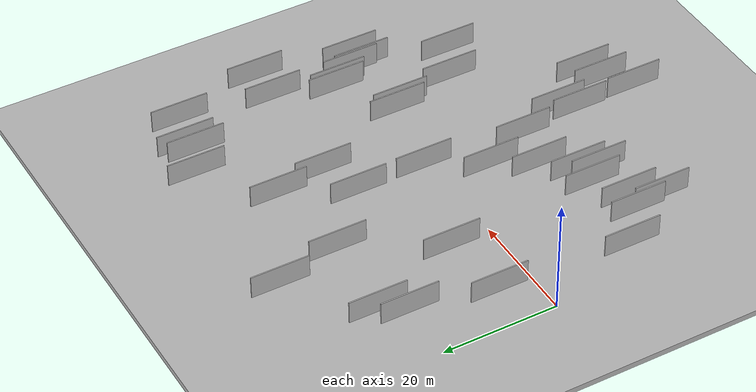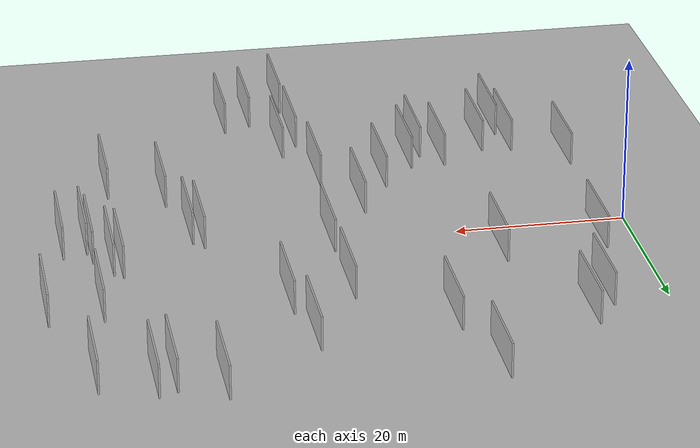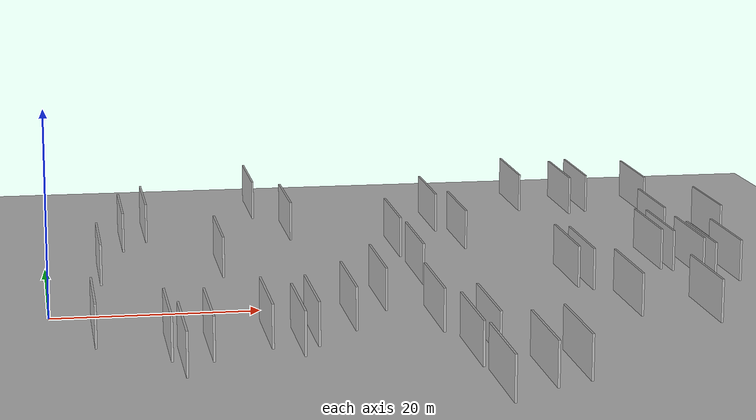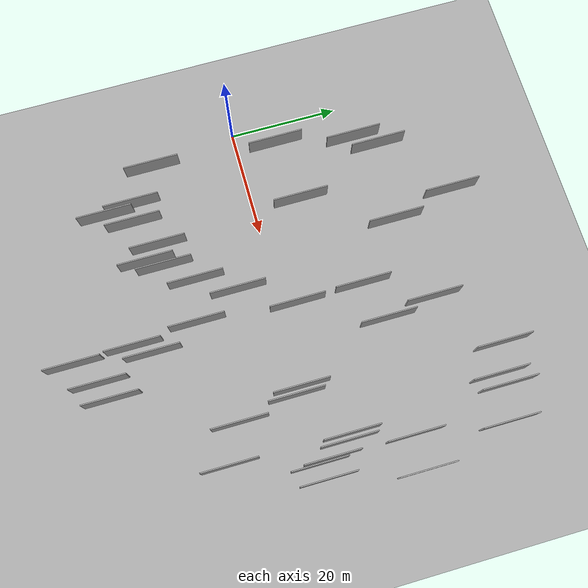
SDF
<?xml version="1.0" encoding="utf-8"?>

<sdf version="1.6">

   <world name="default">

      <gui fullscreen="0">

         <camera name="user_camera">

            <pose>-15 0 4.57585 0 0 0</pose>

            <view_controller>orbit</view_controller>

         </camera>

      </gui>

      <scene>

         <sky>

           <clouds>

             <speed>12</speed>

           </clouds>

         </sky>

         <ambient>0.4 0.4 0.4 1</ambient>

         <background>0.7 0.7 0.7 1</background>

         <shadows>1</shadows>

      </scene>

      <gravity>0 0 -9.8066</gravity>

      <magnetic_field>6e-06 2.3e-05 -4.2e-05</magnetic_field>

      <physics default="0" name="default_physics" type="ode">

         <ode>

            <solver>

               <type>quick</type>

               <iters>10</iters>

               <sor>1.0</sor>

               <use_dynamic_moi_rescaling>0</use_dynamic_moi_rescaling>

            </solver>

            <constraints>

               <cfm>0</cfm>

               <erp>0.2</erp>

               <contact_max_correcting_vel>100</contact_max_correcting_vel>

               <contact_surface_layer>0.001</contact_surface_layer>

            </constraints>

         </ode>

         <max_step_size>0.004</max_step_size>

         <real_time_factor>1</real_time_factor>

         <real_time_update_rate>250</real_time_update_rate>

      </physics>

      <light name="sun" type="directional">

         <cast_shadows>1</cast_shadows>

         <pose>0 0 10 0 0 0</pose>

         <diffuse>0.8 0.8 0.8 1</diffuse>

         <specular>0.2 0.2 0.2 1</specular>

         <attenuation>

            <range>1000</range>

            <constant>0.9</constant>

            <linear>0.01</linear>

            <quadratic>0.001</quadratic>

         </attenuation>

         <direction>-0.5 0.1 -0.9</direction>

      </light>

      <include>

         <name>ground_plane_1</name>

         <uri>model://HANNAS_ground_plane</uri>

         <pose>0 0 0  0 0 0</pose>

      </include>

      <include>

         <name>ground_plane_2</name>

         <uri>model://HANNAS_ground_plane</uri>

         <pose>100 0 0  0 0 0</pose>

      </include>

      <model name="HANNAS_wall_1">

         <static>1</static>

         <pose frame="">13.2933 -21.4593 2.5 0.000000 0.000000 1.570796</pose>

         <link name="link">

            <pose frame="">0 0 2.00 0 0 0</pose>

            <collision name="collision">

               <geometry>

                  <box>

                     <size>10.00 0.2 4.00</size>

                  </box>

               </geometry>

               <max_contacts>10</max_contacts>

               <surface>

                  <contact>

                     <ode/>

                  </contact>

                  <bounce/>

                  <friction>

                     <torsional>

                        <ode/>

                     </torsional>

                     <ode/>

                  </friction>

               </surface>

            </collision>

            <visual name="visual">

               <cast_shadows>0</cast_shadows>

               <geometry>

                  <box>

                     <size>10.00 0.2 4.00</size>

                  </box>

               </geometry>

               <material>

                  <script>

                     <uri>model://HANNAS_wall/materials/scripts</uri>

                     <uri>model://HANNAS_wall/materials/textures</uri>

                     <name>vrc/HANNAS_wall</name>

                  </script>

               </material>

            </visual>

            <self_collide>0</self_collide>

            <enable_wind>0</enable_wind>

            <kinematic>0</kinematic>

         </link>

      </model>

      <model name="HANNAS_wall_2">

         <static>1</static>

         <pose frame="">65.8893 -0.6012 2.5 0.000000 0.000000 1.570796</pose>

         <link name="link">

            <pose frame="">0 0 2.00 0 0 0</pose>

            <collision name="collision">

               <geometry>

                  <box>

                     <size>10.00 0.2 4.00</size>

                  </box>

               </geometry>

               <max_contacts>10</max_contacts>

               <surface>

                  <contact>

                     <ode/>

                  </contact>

                  <bounce/>

                  <friction>

                     <torsional>

                        <ode/>

                     </torsional>

                     <ode/>

                  </friction>

               </surface>

            </collision>

            <visual name="visual">

               <cast_shadows>0</cast_shadows>

               <geometry>

                  <box>

                     <size>10.00 0.2 4.00</size>

                  </box>

               </geometry>

               <material>

                  <script>

                     <uri>model://HANNAS_wall/materials/scripts</uri>

                     <uri>model://HANNAS_wall/materials/textures</uri>

                     <name>vrc/HANNAS_wall</name>

                  </script>

               </material>

            </visual>

            <self_collide>0</self_collide>

            <enable_wind>0</enable_wind>

            <kinematic>0</kinematic>

         </link>

      </model>

      <model name="HANNAS_wall_3">

         <static>1</static>

         <pose frame="">35.5225 2.7296 2.5 0.000000 0.000000 1.570796</pose>

         <link name="link">

            <pose frame="">0 0 2.00 0 0 0</pose>

            <collision name="collision">

               <geometry>

                  <box>

                     <size>10.00 0.2 4.00</size>

                  </box>

               </geometry>

               <max_contacts>10</max_contacts>

               <surface>

                  <contact>

                     <ode/>

                  </contact>

                  <bounce/>

                  <friction>

                     <torsional>

                        <ode/>

                     </torsional>

                     <ode/>

                  </friction>

               </surface>

            </collision>

            <visual name="visual">

               <cast_shadows>0</cast_shadows>

               <geometry>

                  <box>

                     <size>10.00 0.2 4.00</size>

                  </box>

               </geometry>

               <material>

                  <script>

                     <uri>model://HANNAS_wall/materials/scripts</uri>

                     <uri>model://HANNAS_wall/materials/textures</uri>

                     <name>vrc/HANNAS_wall</name>

                  </script>

               </material>

            </visual>

            <self_collide>0</self_collide>

            <enable_wind>0</enable_wind>

            <kinematic>0</kinematic>

         </link>

      </model>

      <model name="HANNAS_wall_4">

         <static>1</static>

         <pose frame="">63.1721 -1.3532 2.5 0.000000 0.000000 1.570796</pose>

         <link name="link">

            <pose frame="">0 0 2.00 0 0 0</pose>

            <collision name="collision">

               <geometry>

                  <box>

                     <size>10.00 0.2 4.00</size>

                  </box>

               </geometry>

               <max_contacts>10</max_contacts>

               <surface>

                  <contact>

                     <ode/>

                  </contact>

                  <bounce/>

                  <friction>

                     <torsional>

                        <ode/>

                     </torsional>

                     <ode/>

                  </friction>

               </surface>

            </collision>

            <visual name="visual">

               <cast_shadows>0</cast_shadows>

               <geometry>

                  <box>

                     <size>10.00 0.2 4.00</size>

                  </box>

               </geometry>

               <material>

                  <script>

                     <uri>model://HANNAS_wall/materials/scripts</uri>

                     <uri>model://HANNAS_wall/materials/textures</uri>

                     <name>vrc/HANNAS_wall</name>

                  </script>

               </material>

            </visual>

            <self_collide>0</self_collide>

            <enable_wind>0</enable_wind>

            <kinematic>0</kinematic>

         </link>

      </model>

      <model name="HANNAS_wall_5">

         <static>1</static>

         <pose frame="">7.8919 21.2013 2.5 0.000000 0.000000 1.570796</pose>

         <link name="link">

            <pose frame="">0 0 2.00 0 0 0</pose>

            <collision name="collision">

               <geometry>

                  <box>

                     <size>10.00 0.2 4.00</size>

                  </box>

               </geometry>

               <max_contacts>10</max_contacts>

               <surface>

                  <contact>

                     <ode/>

                  </contact>

                  <bounce/>

                  <friction>

                     <torsional>

                        <ode/>

                     </torsional>

                     <ode/>

                  </friction>

               </surface>

            </collision>

            <visual name="visual">

               <cast_shadows>0</cast_shadows>

               <geometry>

                  <box>

                     <size>10.00 0.2 4.00</size>

                  </box>

               </geometry>

               <material>

                  <script>

                     <uri>model://HANNAS_wall/materials/scripts</uri>

                     <uri>model://HANNAS_wall/materials/textures</uri>

                     <name>vrc/HANNAS_wall</name>

                  </script>

               </material>

            </visual>

            <self_collide>0</self_collide>

            <enable_wind>0</enable_wind>

            <kinematic>0</kinematic>

         </link>

      </model>

      <model name="HANNAS_wall_6">

         <static>1</static>

         <pose frame="">35.3623 -26.5021 2.5 0.000000 0.000000 1.570796</pose>

         <link name="link">

            <pose frame="">0 0 2.00 0 0 0</pose>

            <collision name="collision">

               <geometry>

                  <box>

                     <size>10.00 0.2 4.00</size>

                  </box>

               </geometry>

               <max_contacts>10</max_contacts>

               <surface>

                  <contact>

                     <ode/>

                  </contact>

                  <bounce/>

                  <friction>

                     <torsional>

                        <ode/>

                     </torsional>

                     <ode/>

                  </friction>

               </surface>

            </collision>

            <visual name="visual">

               <cast_shadows>0</cast_shadows>

               <geometry>

                  <box>

                     <size>10.00 0.2 4.00</size>

                  </box>

               </geometry>

               <material>

                  <script>

                     <uri>model://HANNAS_wall/materials/scripts</uri>

                     <uri>model://HANNAS_wall/materials/textures</uri>

                     <name>vrc/HANNAS_wall</name>

                  </script>

               </material>

            </visual>

            <self_collide>0</self_collide>

            <enable_wind>0</enable_wind>

            <kinematic>0</kinematic>

         </link>

      </model>

      <model name="HANNAS_wall_7">

         <static>1</static>

         <pose frame="">22.6817 -18.0327 2.5 0.000000 0.000000 1.570796</pose>

         <link name="link">

            <pose frame="">0 0 2.00 0 0 0</pose>

            <collision name="collision">

               <geometry>

                  <box>

                     <size>10.00 0.2 4.00</size>

                  </box>

               </geometry>

               <max_contacts>10</max_contacts>

               <surface>

                  <contact>

                     <ode/>

                  </contact>

                  <bounce/>

                  <friction>

                     <torsional>

                        <ode/>

                     </torsional>

                     <ode/>

                  </friction>

               </surface>

            </collision>

            <visual name="visual">

               <cast_shadows>0</cast_shadows>

               <geometry>

                  <box>

                     <size>10.00 0.2 4.00</size>

                  </box>

               </geometry>

               <material>

                  <script>

                     <uri>model://HANNAS_wall/materials/scripts</uri>

                     <uri>model://HANNAS_wall/materials/textures</uri>

                     <name>vrc/HANNAS_wall</name>

                  </script>

               </material>

            </visual>

            <self_collide>0</self_collide>

            <enable_wind>0</enable_wind>

            <kinematic>0</kinematic>

         </link>

      </model>

      <model name="HANNAS_wall_8">

         <static>1</static>

         <pose frame="">22.5826 35.2984 2.5 0.000000 0.000000 1.570796</pose>

         <link name="link">

            <pose frame="">0 0 2.00 0 0 0</pose>

            <collision name="collision">

               <geometry>

                  <box>

                     <size>10.00 0.2 4.00</size>

                  </box>

               </geometry>

               <max_contacts>10</max_contacts>

               <surface>

                  <contact>

                     <ode/>

                  </contact>

                  <bounce/>

                  <friction>

                     <torsional>

                        <ode/>

                     </torsional>

                     <ode/>

                  </friction>

               </surface>

            </collision>

            <visual name="visual">

               <cast_shadows>0</cast_shadows>

               <geometry>

                  <box>

                     <size>10.00 0.2 4.00</size>

                  </box>

               </geometry>

               <material>

                  <script>

                     <uri>model://HANNAS_wall/materials/scripts</uri>

                     <uri>model://HANNAS_wall/materials/textures</uri>

                     <name>vrc/HANNAS_wall</name>

                  </script>

               </material>

            </visual>

            <self_collide>0</self_collide>

            <enable_wind>0</enable_wind>

            <kinematic>0</kinematic>

         </link>

      </model>

      <model name="HANNAS_wall_9">

         <static>1</static>

         <pose frame="">30.3862 -6.6031 2.5 0.000000 0.000000 1.570796</pose>

         <link name="link">

            <pose frame="">0 0 2.00 0 0 0</pose>

            <collision name="collision">

               <geometry>

                  <box>

                     <size>10.00 0.2 4.00</size>

                  </box>

               </geometry>

               <max_contacts>10</max_contacts>

               <surface>

                  <contact>

                     <ode/>

                  </contact>

                  <bounce/>

                  <friction>

                     <torsional>

                        <ode/>

                     </torsional>

                     <ode/>

                  </friction>

               </surface>

            </collision>

            <visual name="visual">

               <cast_shadows>0</cast_shadows>

               <geometry>

                  <box>

                     <size>10.00 0.2 4.00</size>

                  </box>

               </geometry>

               <material>

                  <script>

                     <uri>model://HANNAS_wall/materials/scripts</uri>

                     <uri>model://HANNAS_wall/materials/textures</uri>

                     <name>vrc/HANNAS_wall</name>

                  </script>

               </material>

            </visual>

            <self_collide>0</self_collide>

            <enable_wind>0</enable_wind>

            <kinematic>0</kinematic>

         </link>

      </model>

      <model name="HANNAS_wall_10">

         <static>1</static>

         <pose frame="">34.2135 -14.9727 2.5 0.000000 0.000000 1.570796</pose>

         <link name="link">

            <pose frame="">0 0 2.00 0 0 0</pose>

            <collision name="collision">

               <geometry>

                  <box>

                     <size>10.00 0.2 4.00</size>

                  </box>

               </geometry>

               <max_contacts>10</max_contacts>

               <surface>

                  <contact>

                     <ode/>

                  </contact>

                  <bounce/>

                  <friction>

                     <torsional>

                        <ode/>

                     </torsional>

                     <ode/>

                  </friction>

               </surface>

            </collision>

            <visual name="visual">

               <cast_shadows>0</cast_shadows>

               <geometry>

                  <box>

                     <size>10.00 0.2 4.00</size>

                  </box>

               </geometry>

               <material>

                  <script>

                     <uri>model://HANNAS_wall/materials/scripts</uri>

                     <uri>model://HANNAS_wall/materials/textures</uri>

                     <name>vrc/HANNAS_wall</name>

                  </script>

               </material>

            </visual>

            <self_collide>0</self_collide>

            <enable_wind>0</enable_wind>

            <kinematic>0</kinematic>

         </link>

      </model>

      <model name="HANNAS_wall_11">

         <static>1</static>

         <pose frame="">60.7117 4.4889 2.5 0.000000 0.000000 1.570796</pose>

         <link name="link">

            <pose frame="">0 0 2.00 0 0 0</pose>

            <collision name="collision">

               <geometry>

                  <box>

                     <size>10.00 0.2 4.00</size>

                  </box>

               </geometry>

               <max_contacts>10</max_contacts>

               <surface>

                  <contact>

                     <ode/>

                  </contact>

                  <bounce/>

                  <friction>

                     <torsional>

                        <ode/>

                     </torsional>

                     <ode/>

                  </friction>

               </surface>

            </collision>

            <visual name="visual">

               <cast_shadows>0</cast_shadows>

               <geometry>

                  <box>

                     <size>10.00 0.2 4.00</size>

                  </box>

               </geometry>

               <material>

                  <script>

                     <uri>model://HANNAS_wall/materials/scripts</uri>

                     <uri>model://HANNAS_wall/materials/textures</uri>

                     <name>vrc/HANNAS_wall</name>

                  </script>

               </material>

            </visual>

            <self_collide>0</self_collide>

            <enable_wind>0</enable_wind>

            <kinematic>0</kinematic>

         </link>

      </model>

      <model name="HANNAS_wall_12">

         <static>1</static>

         <pose frame="">40.0495 -33.5827 2.5 0.000000 0.000000 1.570796</pose>

         <link name="link">

            <pose frame="">0 0 2.00 0 0 0</pose>

            <collision name="collision">

               <geometry>

                  <box>

                     <size>10.00 0.2 4.00</size>

                  </box>

               </geometry>

               <max_contacts>10</max_contacts>

               <surface>

                  <contact>

                     <ode/>

                  </contact>

                  <bounce/>

                  <friction>

                     <torsional>

                        <ode/>

                     </torsional>

                     <ode/>

                  </friction>

               </surface>

            </collision>

            <visual name="visual">

               <cast_shadows>0</cast_shadows>

               <geometry>

                  <box>

                     <size>10.00 0.2 4.00</size>

                  </box>

               </geometry>

               <material>

                  <script>

                     <uri>model://HANNAS_wall/materials/scripts</uri>

                     <uri>model://HANNAS_wall/materials/textures</uri>

                     <name>vrc/HANNAS_wall</name>

                  </script>

               </material>

            </visual>

            <self_collide>0</self_collide>

            <enable_wind>0</enable_wind>

            <kinematic>0</kinematic>

         </link>

      </model>

      <model name="HANNAS_wall_13">

         <static>1</static>

         <pose frame="">26.6444 -13.2926 2.5 0.000000 0.000000 1.570796</pose>

         <link name="link">

            <pose frame="">0 0 2.00 0 0 0</pose>

            <collision name="collision">

               <geometry>

                  <box>

                     <size>10.00 0.2 4.00</size>

                  </box>

               </geometry>

               <max_contacts>10</max_contacts>

               <surface>

                  <contact>

                     <ode/>

                  </contact>

                  <bounce/>

                  <friction>

                     <torsional>

                        <ode/>

                     </torsional>

                     <ode/>

                  </friction>

               </surface>

            </collision>

            <visual name="visual">

               <cast_shadows>0</cast_shadows>

               <geometry>

                  <box>

                     <size>10.00 0.2 4.00</size>

                  </box>

               </geometry>

               <material>

                  <script>

                     <uri>model://HANNAS_wall/materials/scripts</uri>

                     <uri>model://HANNAS_wall/materials/textures</uri>

                     <name>vrc/HANNAS_wall</name>

                  </script>

               </material>

            </visual>

            <self_collide>0</self_collide>

            <enable_wind>0</enable_wind>

            <kinematic>0</kinematic>

         </link>

      </model>

      <model name="HANNAS_wall_14">

         <static>1</static>

         <pose frame="">59.3404 -15.7115 2.5 0.000000 0.000000 1.570796</pose>

         <link name="link">

            <pose frame="">0 0 2.00 0 0 0</pose>

            <collision name="collision">

               <geometry>

                  <box>

                     <size>10.00 0.2 4.00</size>

                  </box>

               </geometry>

               <max_contacts>10</max_contacts>

               <surface>

                  <contact>

                     <ode/>

                  </contact>

                  <bounce/>

                  <friction>

                     <torsional>

                        <ode/>

                     </torsional>

                     <ode/>

                  </friction>

               </surface>

            </collision>

            <visual name="visual">

               <cast_shadows>0</cast_shadows>

               <geometry>

                  <box>

                     <size>10.00 0.2 4.00</size>

                  </box>

               </geometry>

               <material>

                  <script>

                     <uri>model://HANNAS_wall/materials/scripts</uri>

                     <uri>model://HANNAS_wall/materials/textures</uri>

                     <name>vrc/HANNAS_wall</name>

                  </script>

               </material>

            </visual>

            <self_collide>0</self_collide>

            <enable_wind>0</enable_wind>

            <kinematic>0</kinematic>

         </link>

      </model>

      <model name="HANNAS_wall_15">

         <static>1</static>

         <pose frame="">25.3416 23.9030 2.5 0.000000 0.000000 1.570796</pose>

         <link name="link">

            <pose frame="">0 0 2.00 0 0 0</pose>

            <collision name="collision">

               <geometry>

                  <box>

                     <size>10.00 0.2 4.00</size>

                  </box>

               </geometry>

               <max_contacts>10</max_contacts>

               <surface>

                  <contact>

                     <ode/>

                  </contact>

                  <bounce/>

                  <friction>

                     <torsional>

                        <ode/>

                     </torsional>

                     <ode/>

                  </friction>

               </surface>

            </collision>

            <visual name="visual">

               <cast_shadows>0</cast_shadows>

               <geometry>

                  <box>

                     <size>10.00 0.2 4.00</size>

                  </box>

               </geometry>

               <material>

                  <script>

                     <uri>model://HANNAS_wall/materials/scripts</uri>

                     <uri>model://HANNAS_wall/materials/textures</uri>

                     <name>vrc/HANNAS_wall</name>

                  </script>

               </material>

            </visual>

            <self_collide>0</self_collide>

            <enable_wind>0</enable_wind>

            <kinematic>0</kinematic>

         </link>

      </model>

      <model name="HANNAS_wall_16">

         <static>1</static>

         <pose frame="">43.2343 -32.1245 2.5 0.000000 0.000000 1.570796</pose>

         <link name="link">

            <pose frame="">0 0 2.00 0 0 0</pose>

            <collision name="collision">

               <geometry>

                  <box>

                     <size>10.00 0.2 4.00</size>

                  </box>

               </geometry>

               <max_contacts>10</max_contacts>

               <surface>

                  <contact>

                     <ode/>

                  </contact>

                  <bounce/>

                  <friction>

                     <torsional>

                        <ode/>

                     </torsional>

                     <ode/>

                  </friction>

               </surface>

            </collision>

            <visual name="visual">

               <cast_shadows>0</cast_shadows>

               <geometry>

                  <box>

                     <size>10.00 0.2 4.00</size>

                  </box>

               </geometry>

               <material>

                  <script>

                     <uri>model://HANNAS_wall/materials/scripts</uri>

                     <uri>model://HANNAS_wall/materials/textures</uri>

                     <name>vrc/HANNAS_wall</name>

                  </script>

               </material>

            </visual>

            <self_collide>0</self_collide>

            <enable_wind>0</enable_wind>

            <kinematic>0</kinematic>

         </link>

      </model>

      <model name="HANNAS_wall_17">

         <static>1</static>

         <pose frame="">52.9444 -12.3076 2.5 0.000000 0.000000 1.570796</pose>

         <link name="link">

            <pose frame="">0 0 2.00 0 0 0</pose>

            <collision name="collision">

               <geometry>

                  <box>

                     <size>10.00 0.2 4.00</size>

                  </box>

               </geometry>

               <max_contacts>10</max_contacts>

               <surface>

                  <contact>

                     <ode/>

                  </contact>

                  <bounce/>

                  <friction>

                     <torsional>

                        <ode/>

                     </torsional>

                     <ode/>

                  </friction>

               </surface>

            </collision>

            <visual name="visual">

               <cast_shadows>0</cast_shadows>

               <geometry>

                  <box>

                     <size>10.00 0.2 4.00</size>

                  </box>

               </geometry>

               <material>

                  <script>

                     <uri>model://HANNAS_wall/materials/scripts</uri>

                     <uri>model://HANNAS_wall/materials/textures</uri>

                     <name>vrc/HANNAS_wall</name>

                  </script>

               </material>

            </visual>

            <self_collide>0</self_collide>

            <enable_wind>0</enable_wind>

            <kinematic>0</kinematic>

         </link>

      </model>

      <model name="HANNAS_wall_18">

         <static>1</static>

         <pose frame="">21.1106 -20.9170 2.5 0.000000 0.000000 1.570796</pose>

         <link name="link">

            <pose frame="">0 0 2.00 0 0 0</pose>

            <collision name="collision">

               <geometry>

                  <box>

                     <size>10.00 0.2 4.00</size>

                  </box>

               </geometry>

               <max_contacts>10</max_contacts>

               <surface>

                  <contact>

                     <ode/>

                  </contact>

                  <bounce/>

                  <friction>

                     <torsional>

                        <ode/>

                     </torsional>

                     <ode/>

                  </friction>

               </surface>

            </collision>

            <visual name="visual">

               <cast_shadows>0</cast_shadows>

               <geometry>

                  <box>

                     <size>10.00 0.2 4.00</size>

                  </box>

               </geometry>

               <material>

                  <script>

                     <uri>model://HANNAS_wall/materials/scripts</uri>

                     <uri>model://HANNAS_wall/materials/textures</uri>

                     <name>vrc/HANNAS_wall</name>

                  </script>

               </material>

            </visual>

            <self_collide>0</self_collide>

            <enable_wind>0</enable_wind>

            <kinematic>0</kinematic>

         </link>

      </model>

      <model name="HANNAS_wall_19">

         <static>1</static>

         <pose frame="">59.7112 5.2512 2.5 0.000000 0.000000 1.570796</pose>

         <link name="link">

            <pose frame="">0 0 2.00 0 0 0</pose>

            <collision name="collision">

               <geometry>

                  <box>

                     <size>10.00 0.2 4.00</size>

                  </box>

               </geometry>

               <max_contacts>10</max_contacts>

               <surface>

                  <contact>

                     <ode/>

                  </contact>

                  <bounce/>

                  <friction>

                     <torsional>

                        <ode/>

                     </torsional>

                     <ode/>

                  </friction>

               </surface>

            </collision>

            <visual name="visual">

               <cast_shadows>0</cast_shadows>

               <geometry>

                  <box>

                     <size>10.00 0.2 4.00</size>

                  </box>

               </geometry>

               <material>

                  <script>

                     <uri>model://HANNAS_wall/materials/scripts</uri>

                     <uri>model://HANNAS_wall/materials/textures</uri>

                     <name>vrc/HANNAS_wall</name>

                  </script>

               </material>

            </visual>

            <self_collide>0</self_collide>

            <enable_wind>0</enable_wind>

            <kinematic>0</kinematic>

         </link>

      </model>

      <model name="HANNAS_wall_20">

         <static>1</static>

         <pose frame="">18.6357 -18.1780 2.5 0.000000 0.000000 1.570796</pose>

         <link name="link">

            <pose frame="">0 0 2.00 0 0 0</pose>

            <collision name="collision">

               <geometry>

                  <box>

                     <size>10.00 0.2 4.00</size>

                  </box>

               </geometry>

               <max_contacts>10</max_contacts>

               <surface>

                  <contact>

                     <ode/>

                  </contact>

                  <bounce/>

                  <friction>

                     <torsional>

                        <ode/>

                     </torsional>

                     <ode/>

                  </friction>

               </surface>

            </collision>

            <visual name="visual">

               <cast_shadows>0</cast_shadows>

               <geometry>

                  <box>

                     <size>10.00 0.2 4.00</size>

                  </box>

               </geometry>

               <material>

                  <script>

                     <uri>model://HANNAS_wall/materials/scripts</uri>

                     <uri>model://HANNAS_wall/materials/textures</uri>

                     <name>vrc/HANNAS_wall</name>

                  </script>

               </material>

            </visual>

            <self_collide>0</self_collide>

            <enable_wind>0</enable_wind>

            <kinematic>0</kinematic>

         </link>

      </model>

      <model name="HANNAS_wall_21">

         <static>1</static>

         <pose frame="">62.7009 1.0073 2.5 0.000000 0.000000 1.570796</pose>

         <link name="link">

            <pose frame="">0 0 2.00 0 0 0</pose>

            <collision name="collision">

               <geometry>

                  <box>

                     <size>10.00 0.2 4.00</size>

                  </box>

               </geometry>

               <max_contacts>10</max_contacts>

               <surface>

                  <contact>

                     <ode/>

                  </contact>

                  <bounce/>

                  <friction>

                     <torsional>

                        <ode/>

                     </torsional>

                     <ode/>

                  </friction>

               </surface>

            </collision>

            <visual name="visual">

               <cast_shadows>0</cast_shadows>

               <geometry>

                  <box>

                     <size>10.00 0.2 4.00</size>

                  </box>

               </geometry>

               <material>

                  <script>

                     <uri>model://HANNAS_wall/materials/scripts</uri>

                     <uri>model://HANNAS_wall/materials/textures</uri>

                     <name>vrc/HANNAS_wall</name>

                  </script>

               </material>

            </visual>

            <self_collide>0</self_collide>

            <enable_wind>0</enable_wind>

            <kinematic>0</kinematic>

         </link>

      </model>

      <model name="HANNAS_wall_22">

         <static>1</static>

         <pose frame="">57.0544 32.3038 2.5 0.000000 0.000000 1.570796</pose>

         <link name="link">

            <pose frame="">0 0 2.00 0 0 0</pose>

            <collision name="collision">

               <geometry>

                  <box>

                     <size>10.00 0.2 4.00</size>

                  </box>

               </geometry>

               <max_contacts>10</max_contacts>

               <surface>

                  <contact>

                     <ode/>

                  </contact>

                  <bounce/>

                  <friction>

                     <torsional>

                        <ode/>

                     </torsional>

                     <ode/>

                  </friction>

               </surface>

            </collision>

            <visual name="visual">

               <cast_shadows>0</cast_shadows>

               <geometry>

                  <box>

                     <size>10.00 0.2 4.00</size>

                  </box>

               </geometry>

               <material>

                  <script>

                     <uri>model://HANNAS_wall/materials/scripts</uri>

                     <uri>model://HANNAS_wall/materials/textures</uri>

                     <name>vrc/HANNAS_wall</name>

                  </script>

               </material>

            </visual>

            <self_collide>0</self_collide>

            <enable_wind>0</enable_wind>

            <kinematic>0</kinematic>

         </link>

      </model>

      <model name="HANNAS_wall_23">

         <static>1</static>

         <pose frame="">49.9016 -0.6563 2.5 0.000000 0.000000 1.570796</pose>

         <link name="link">

            <pose frame="">0 0 2.00 0 0 0</pose>

            <collision name="collision">

               <geometry>

                  <box>

                     <size>10.00 0.2 4.00</size>

                  </box>

               </geometry>

               <max_contacts>10</max_contacts>

               <surface>

                  <contact>

                     <ode/>

                  </contact>

                  <bounce/>

                  <friction>

                     <torsional>

                        <ode/>

                     </torsional>

                     <ode/>

                  </friction>

               </surface>

            </collision>

            <visual name="visual">

               <cast_shadows>0</cast_shadows>

               <geometry>

                  <box>

                     <size>10.00 0.2 4.00</size>

                  </box>

               </geometry>

               <material>

                  <script>

                     <uri>model://HANNAS_wall/materials/scripts</uri>

                     <uri>model://HANNAS_wall/materials/textures</uri>

                     <name>vrc/HANNAS_wall</name>

                  </script>

               </material>

            </visual>

            <self_collide>0</self_collide>

            <enable_wind>0</enable_wind>

            <kinematic>0</kinematic>

         </link>

      </model>

      <model name="HANNAS_wall_24">

         <static>1</static>

         <pose frame="">40.9804 25.8754 2.5 0.000000 0.000000 1.570796</pose>

         <link name="link">

            <pose frame="">0 0 2.00 0 0 0</pose>

            <collision name="collision">

               <geometry>

                  <box>

                     <size>10.00 0.2 4.00</size>

                  </box>

               </geometry>

               <max_contacts>10</max_contacts>

               <surface>

                  <contact>

                     <ode/>

                  </contact>

                  <bounce/>

                  <friction>

                     <torsional>

                        <ode/>

                     </torsional>

                     <ode/>

                  </friction>

               </surface>

            </collision>

            <visual name="visual">

               <cast_shadows>0</cast_shadows>

               <geometry>

                  <box>

                     <size>10.00 0.2 4.00</size>

                  </box>

               </geometry>

               <material>

                  <script>

                     <uri>model://HANNAS_wall/materials/scripts</uri>

                     <uri>model://HANNAS_wall/materials/textures</uri>

                     <name>vrc/HANNAS_wall</name>

                  </script>

               </material>

            </visual>

            <self_collide>0</self_collide>

            <enable_wind>0</enable_wind>

            <kinematic>0</kinematic>

         </link>

      </model>

      <model name="HANNAS_wall_25">

         <static>1</static>

         <pose frame="">37.3900 -23.6166 2.5 0.000000 0.000000 1.570796</pose>

         <link name="link">

            <pose frame="">0 0 2.00 0 0 0</pose>

            <collision name="collision">

               <geometry>

                  <box>

                     <size>10.00 0.2 4.00</size>

                  </box>

               </geometry>

               <max_contacts>10</max_contacts>

               <surface>

                  <contact>

                     <ode/>

                  </contact>

                  <bounce/>

                  <friction>

                     <torsional>

                        <ode/>

                     </torsional>

                     <ode/>

                  </friction>

               </surface>

            </collision>

            <visual name="visual">

               <cast_shadows>0</cast_shadows>

               <geometry>

                  <box>

                     <size>10.00 0.2 4.00</size>

                  </box>

               </geometry>

               <material>

                  <script>

                     <uri>model://HANNAS_wall/materials/scripts</uri>

                     <uri>model://HANNAS_wall/materials/textures</uri>

                     <name>vrc/HANNAS_wall</name>

                  </script>

               </material>

            </visual>

            <self_collide>0</self_collide>

            <enable_wind>0</enable_wind>

            <kinematic>0</kinematic>

         </link>

      </model>

      <model name="HANNAS_wall_26">

         <static>1</static>

         <pose frame="">35.6978 -37.1457 2.5 0.000000 0.000000 1.570796</pose>

         <link name="link">

            <pose frame="">0 0 2.00 0 0 0</pose>

            <collision name="collision">

               <geometry>

                  <box>

                     <size>10.00 0.2 4.00</size>

                  </box>

               </geometry>

               <max_contacts>10</max_contacts>

               <surface>

                  <contact>

                     <ode/>

                  </contact>

                  <bounce/>

                  <friction>

                     <torsional>

                        <ode/>

                     </torsional>

                     <ode/>

                  </friction>

               </surface>

            </collision>

            <visual name="visual">

               <cast_shadows>0</cast_shadows>

               <geometry>

                  <box>

                     <size>10.00 0.2 4.00</size>

                  </box>

               </geometry>

               <material>

                  <script>

                     <uri>model://HANNAS_wall/materials/scripts</uri>

                     <uri>model://HANNAS_wall/materials/textures</uri>

                     <name>vrc/HANNAS_wall</name>

                  </script>

               </material>

            </visual>

            <self_collide>0</self_collide>

            <enable_wind>0</enable_wind>

            <kinematic>0</kinematic>

         </link>

      </model>

      <model name="HANNAS_wall_27">

         <static>1</static>

         <pose frame="">5.0673 7.2114 2.5 0.000000 0.000000 1.570796</pose>

         <link name="link">

            <pose frame="">0 0 2.00 0 0 0</pose>

            <collision name="collision">

               <geometry>

                  <box>

                     <size>10.00 0.2 4.00</size>

                  </box>

               </geometry>

               <max_contacts>10</max_contacts>

               <surface>

                  <contact>

                     <ode/>

                  </contact>

                  <bounce/>

                  <friction>

                     <torsional>

                        <ode/>

                     </torsional>

                     <ode/>

                  </friction>

               </surface>

            </collision>

            <visual name="visual">

               <cast_shadows>0</cast_shadows>

               <geometry>

                  <box>

                     <size>10.00 0.2 4.00</size>

                  </box>

               </geometry>

               <material>

                  <script>

                     <uri>model://HANNAS_wall/materials/scripts</uri>

                     <uri>model://HANNAS_wall/materials/textures</uri>

                     <name>vrc/HANNAS_wall</name>

                  </script>

               </material>

            </visual>

            <self_collide>0</self_collide>

            <enable_wind>0</enable_wind>

            <kinematic>0</kinematic>

         </link>

      </model>

      <model name="HANNAS_wall_28">

         <static>1</static>

         <pose frame="">16.9035 8.6126 2.5 0.000000 0.000000 1.570796</pose>

         <link name="link">

            <pose frame="">0 0 2.00 0 0 0</pose>

            <collision name="collision">

               <geometry>

                  <box>

                     <size>10.00 0.2 4.00</size>

                  </box>

               </geometry>

               <max_contacts>10</max_contacts>

               <surface>

                  <contact>

                     <ode/>

                  </contact>

                  <bounce/>

                  <friction>

                     <torsional>

                        <ode/>

                     </torsional>

                     <ode/>

                  </friction>

               </surface>

            </collision>

            <visual name="visual">

               <cast_shadows>0</cast_shadows>

               <geometry>

                  <box>

                     <size>10.00 0.2 4.00</size>

                  </box>

               </geometry>

               <material>

                  <script>

                     <uri>model://HANNAS_wall/materials/scripts</uri>

                     <uri>model://HANNAS_wall/materials/textures</uri>

                     <name>vrc/HANNAS_wall</name>

                  </script>

               </material>

            </visual>

            <self_collide>0</self_collide>

            <enable_wind>0</enable_wind>

            <kinematic>0</kinematic>

         </link>

      </model>

      <model name="HANNAS_wall_29">

         <static>1</static>

         <pose frame="">9.8022 -20.9420 2.5 0.000000 0.000000 1.570796</pose>

         <link name="link">

            <pose frame="">0 0 2.00 0 0 0</pose>

            <collision name="collision">

               <geometry>

                  <box>

                     <size>10.00 0.2 4.00</size>

                  </box>

               </geometry>

               <max_contacts>10</max_contacts>

               <surface>

                  <contact>

                     <ode/>

                  </contact>

                  <bounce/>

                  <friction>

                     <torsional>

                        <ode/>

                     </torsional>

                     <ode/>

                  </friction>

               </surface>

            </collision>

            <visual name="visual">

               <cast_shadows>0</cast_shadows>

               <geometry>

                  <box>

                     <size>10.00 0.2 4.00</size>

                  </box>

               </geometry>

               <material>

                  <script>

                     <uri>model://HANNAS_wall/materials/scripts</uri>

                     <uri>model://HANNAS_wall/materials/textures</uri>

                     <name>vrc/HANNAS_wall</name>

                  </script>

               </material>

            </visual>

            <self_collide>0</self_collide>

            <enable_wind>0</enable_wind>

            <kinematic>0</kinematic>

         </link>

      </model>

      <model name="HANNAS_wall_30">

         <static>1</static>

         <pose frame="">59.0740 33.1416 2.5 0.000000 0.000000 1.570796</pose>

         <link name="link">

            <pose frame="">0 0 2.00 0 0 0</pose>

            <collision name="collision">

               <geometry>

                  <box>

                     <size>10.00 0.2 4.00</size>

                  </box>

               </geometry>

               <max_contacts>10</max_contacts>

               <surface>

                  <contact>

                     <ode/>

                  </contact>

                  <bounce/>

                  <friction>

                     <torsional>

                        <ode/>

                     </torsional>

                     <ode/>

                  </friction>

               </surface>

            </collision>

            <visual name="visual">

               <cast_shadows>0</cast_shadows>

               <geometry>

                  <box>

                     <size>10.00 0.2 4.00</size>

                  </box>

               </geometry>

               <material>

                  <script>

                     <uri>model://HANNAS_wall/materials/scripts</uri>

                     <uri>model://HANNAS_wall/materials/textures</uri>

                     <name>vrc/HANNAS_wall</name>

                  </script>

               </material>

            </visual>

            <self_collide>0</self_collide>

            <enable_wind>0</enable_wind>

            <kinematic>0</kinematic>

         </link>

      </model>

      <model name="HANNAS_wall_31">

         <static>1</static>

         <pose frame="">10.6787 -25.9665 2.5 0.000000 0.000000 1.570796</pose>

         <link name="link">

            <pose frame="">0 0 2.00 0 0 0</pose>

            <collision name="collision">

               <geometry>

                  <box>

                     <size>10.00 0.2 4.00</size>

                  </box>

               </geometry>

               <max_contacts>10</max_contacts>

               <surface>

                  <contact>

                     <ode/>

                  </contact>

                  <bounce/>

                  <friction>

                     <torsional>

                        <ode/>

                     </torsional>

                     <ode/>

                  </friction>

               </surface>

            </collision>

            <visual name="visual">

               <cast_shadows>0</cast_shadows>

               <geometry>

                  <box>

                     <size>10.00 0.2 4.00</size>

                  </box>

               </geometry>

               <material>

                  <script>

                     <uri>model://HANNAS_wall/materials/scripts</uri>

                     <uri>model://HANNAS_wall/materials/textures</uri>

                     <name>vrc/HANNAS_wall</name>

                  </script>

               </material>

            </visual>

            <self_collide>0</self_collide>

            <enable_wind>0</enable_wind>

            <kinematic>0</kinematic>

         </link>

      </model>

      <model name="HANNAS_wall_32">

         <static>1</static>

         <pose frame="">65.1449 31.1943 2.5 0.000000 0.000000 1.570796</pose>

         <link name="link">

            <pose frame="">0 0 2.00 0 0 0</pose>

            <collision name="collision">

               <geometry>

                  <box>

                     <size>10.00 0.2 4.00</size>

                  </box>

               </geometry>

               <max_contacts>10</max_contacts>

               <surface>

                  <contact>

                     <ode/>

                  </contact>

                  <bounce/>

                  <friction>

                     <torsional>

                        <ode/>

                     </torsional>

                     <ode/>

                  </friction>

               </surface>

            </collision>

            <visual name="visual">

               <cast_shadows>0</cast_shadows>

               <geometry>

                  <box>

                     <size>10.00 0.2 4.00</size>

                  </box>

               </geometry>

               <material>

                  <script>

                     <uri>model://HANNAS_wall/materials/scripts</uri>

                     <uri>model://HANNAS_wall/materials/textures</uri>

                     <name>vrc/HANNAS_wall</name>

                  </script>

               </material>

            </visual>

            <self_collide>0</self_collide>

            <enable_wind>0</enable_wind>

            <kinematic>0</kinematic>

         </link>

      </model>

      <model name="HANNAS_wall_33">

         <static>1</static>

         <pose frame="">68.9094 15.4887 2.5 0.000000 0.000000 1.570796</pose>

         <link name="link">

            <pose frame="">0 0 2.00 0 0 0</pose>

            <collision name="collision">

               <geometry>

                  <box>

                     <size>10.00 0.2 4.00</size>

                  </box>

               </geometry>

               <max_contacts>10</max_contacts>

               <surface>

                  <contact>

                     <ode/>

                  </contact>

                  <bounce/>

                  <friction>

                     <torsional>

                        <ode/>

                     </torsional>

                     <ode/>

                  </friction>

               </surface>

            </collision>

            <visual name="visual">

               <cast_shadows>0</cast_shadows>

               <geometry>

                  <box>

                     <size>10.00 0.2 4.00</size>

                  </box>

               </geometry>

               <material>

                  <script>

                     <uri>model://HANNAS_wall/materials/scripts</uri>

                     <uri>model://HANNAS_wall/materials/textures</uri>

                     <name>vrc/HANNAS_wall</name>

                  </script>

               </material>

            </visual>

            <self_collide>0</self_collide>

            <enable_wind>0</enable_wind>

            <kinematic>0</kinematic>

         </link>

      </model>

      <model name="HANNAS_wall_34">

         <static>1</static>

         <pose frame="">51.9863 34.7349 2.5 0.000000 0.000000 1.570796</pose>

         <link name="link">

            <pose frame="">0 0 2.00 0 0 0</pose>

            <collision name="collision">

               <geometry>

                  <box>

                     <size>10.00 0.2 4.00</size>

                  </box>

               </geometry>

               <max_contacts>10</max_contacts>

               <surface>

                  <contact>

                     <ode/>

                  </contact>

                  <bounce/>

                  <friction>

                     <torsional>

                        <ode/>

                     </torsional>

                     <ode/>

                  </friction>

               </surface>

            </collision>

            <visual name="visual">

               <cast_shadows>0</cast_shadows>

               <geometry>

                  <box>

                     <size>10.00 0.2 4.00</size>

                  </box>

               </geometry>

               <material>

                  <script>

                     <uri>model://HANNAS_wall/materials/scripts</uri>

                     <uri>model://HANNAS_wall/materials/textures</uri>

                     <name>vrc/HANNAS_wall</name>

                  </script>

               </material>

            </visual>

            <self_collide>0</self_collide>

            <enable_wind>0</enable_wind>

            <kinematic>0</kinematic>

         </link>

      </model>

      <model name="HANNAS_wall_35">

         <static>1</static>

         <pose frame="">51.0804 -1.8878 2.5 0.000000 0.000000 1.570796</pose>

         <link name="link">

            <pose frame="">0 0 2.00 0 0 0</pose>

            <collision name="collision">

               <geometry>

                  <box>

                     <size>10.00 0.2 4.00</size>

                  </box>

               </geometry>

               <max_contacts>10</max_contacts>

               <surface>

                  <contact>

                     <ode/>

                  </contact>

                  <bounce/>

                  <friction>

                     <torsional>

                        <ode/>

                     </torsional>

                     <ode/>

                  </friction>

               </surface>

            </collision>

            <visual name="visual">

               <cast_shadows>0</cast_shadows>

               <geometry>

                  <box>

                     <size>10.00 0.2 4.00</size>

                  </box>

               </geometry>

               <material>

                  <script>

                     <uri>model://HANNAS_wall/materials/scripts</uri>

                     <uri>model://HANNAS_wall/materials/textures</uri>

                     <name>vrc/HANNAS_wall</name>

                  </script>

               </material>

            </visual>

            <self_collide>0</self_collide>

            <enable_wind>0</enable_wind>

            <kinematic>0</kinematic>

         </link>

      </model>

      <model name="HANNAS_wall_36">

         <static>1</static>

         <pose frame="">42.4856 17.1071 2.5 0.000000 0.000000 1.570796</pose>

         <link name="link">

            <pose frame="">0 0 2.00 0 0 0</pose>

            <collision name="collision">

               <geometry>

                  <box>

                     <size>10.00 0.2 4.00</size>

                  </box>

               </geometry>

               <max_contacts>10</max_contacts>

               <surface>

                  <contact>

                     <ode/>

                  </contact>

                  <bounce/>

                  <friction>

                     <torsional>

                        <ode/>

                     </torsional>

                     <ode/>

                  </friction>

               </surface>

            </collision>

            <visual name="visual">

               <cast_shadows>0</cast_shadows>

               <geometry>

                  <box>

                     <size>10.00 0.2 4.00</size>

                  </box>

               </geometry>

               <material>

                  <script>

                     <uri>model://HANNAS_wall/materials/scripts</uri>

                     <uri>model://HANNAS_wall/materials/textures</uri>

                     <name>vrc/HANNAS_wall</name>

                  </script>

               </material>

            </visual>

            <self_collide>0</self_collide>

            <enable_wind>0</enable_wind>

            <kinematic>0</kinematic>

         </link>

      </model>

      <model name="HANNAS_wall_37">

         <static>1</static>

         <pose frame="">10.4604 25.1863 2.5 0.000000 0.000000 1.570796</pose>

         <link name="link">

            <pose frame="">0 0 2.00 0 0 0</pose>

            <collision name="collision">

               <geometry>

                  <box>

                     <size>10.00 0.2 4.00</size>

                  </box>

               </geometry>

               <max_contacts>10</max_contacts>

               <surface>

                  <contact>

                     <ode/>

                  </contact>

                  <bounce/>

                  <friction>

                     <torsional>

                        <ode/>

                     </torsional>

                     <ode/>

                  </friction>

               </surface>

            </collision>

            <visual name="visual">

               <cast_shadows>0</cast_shadows>

               <geometry>

                  <box>

                     <size>10.00 0.2 4.00</size>

                  </box>

               </geometry>

               <material>

                  <script>

                     <uri>model://HANNAS_wall/materials/scripts</uri>

                     <uri>model://HANNAS_wall/materials/textures</uri>

                     <name>vrc/HANNAS_wall</name>

                  </script>

               </material>

            </visual>

            <self_collide>0</self_collide>

            <enable_wind>0</enable_wind>

            <kinematic>0</kinematic>

         </link>

      </model>

      <model name="HANNAS_wall_38">

         <static>1</static>

         <pose frame="">35.3158 14.6844 2.5 0.000000 0.000000 1.570796</pose>

         <link name="link">

            <pose frame="">0 0 2.00 0 0 0</pose>

            <collision name="collision">

               <geometry>

                  <box>

                     <size>10.00 0.2 4.00</size>

                  </box>

               </geometry>

               <max_contacts>10</max_contacts>

               <surface>

                  <contact>

                     <ode/>

                  </contact>

                  <bounce/>

                  <friction>

                     <torsional>

                        <ode/>

                     </torsional>

                     <ode/>

                  </friction>

               </surface>

            </collision>

            <visual name="visual">

               <cast_shadows>0</cast_shadows>

               <geometry>

                  <box>

                     <size>10.00 0.2 4.00</size>

                  </box>

               </geometry>

               <material>

                  <script>

                     <uri>model://HANNAS_wall/materials/scripts</uri>

                     <uri>model://HANNAS_wall/materials/textures</uri>

                     <name>vrc/HANNAS_wall</name>

                  </script>

               </material>

            </visual>

            <self_collide>0</self_collide>

            <enable_wind>0</enable_wind>

            <kinematic>0</kinematic>

         </link>

      </model>

      <model name="HANNAS_wall_39">

         <static>1</static>

         <pose frame="">62.8646 15.3392 2.5 0.000000 0.000000 1.570796</pose>

         <link name="link">

            <pose frame="">0 0 2.00 0 0 0</pose>

            <collision name="collision">

               <geometry>

                  <box>

                     <size>10.00 0.2 4.00</size>

                  </box>

               </geometry>

               <max_contacts>10</max_contacts>

               <surface>

                  <contact>

                     <ode/>

                  </contact>

                  <bounce/>

                  <friction>

                     <torsional>

                        <ode/>

                     </torsional>

                     <ode/>

                  </friction>

               </surface>

            </collision>

            <visual name="visual">

               <cast_shadows>0</cast_shadows>

               <geometry>

                  <box>

                     <size>10.00 0.2 4.00</size>

                  </box>

               </geometry>

               <material>

                  <script>

                     <uri>model://HANNAS_wall/materials/scripts</uri>

                     <uri>model://HANNAS_wall/materials/textures</uri>

                     <name>vrc/HANNAS_wall</name>

                  </script>

               </material>

            </visual>

            <self_collide>0</self_collide>

            <enable_wind>0</enable_wind>

            <kinematic>0</kinematic>

         </link>

      </model>

      <model name="HANNAS_wall_40">

         <static>1</static>

         <pose frame="">3.6465 -15.7939 2.5 0.000000 0.000000 1.570796</pose>

         <link name="link">

            <pose frame="">0 0 2.00 0 0 0</pose>

            <collision name="collision">

               <geometry>

                  <box>

                     <size>10.00 0.2 4.00</size>

                  </box>

               </geometry>

               <max_contacts>10</max_contacts>

               <surface>

                  <contact>

                     <ode/>

                  </contact>

                  <bounce/>

                  <friction>

                     <torsional>

                        <ode/>

                     </torsional>

                     <ode/>

                  </friction>

               </surface>

            </collision>

            <visual name="visual">

               <cast_shadows>0</cast_shadows>

               <geometry>

                  <box>

                     <size>10.00 0.2 4.00</size>

                  </box>

               </geometry>

               <material>

                  <script>

                     <uri>model://HANNAS_wall/materials/scripts</uri>

                     <uri>model://HANNAS_wall/materials/textures</uri>

                     <name>vrc/HANNAS_wall</name>

                  </script>

               </material>

            </visual>

            <self_collide>0</self_collide>

            <enable_wind>0</enable_wind>

            <kinematic>0</kinematic>

         </link>

      </model>

   </world>

</sdf>
